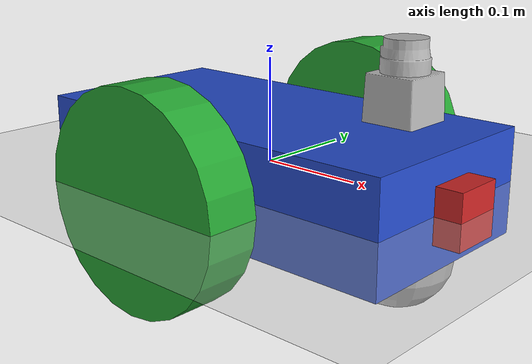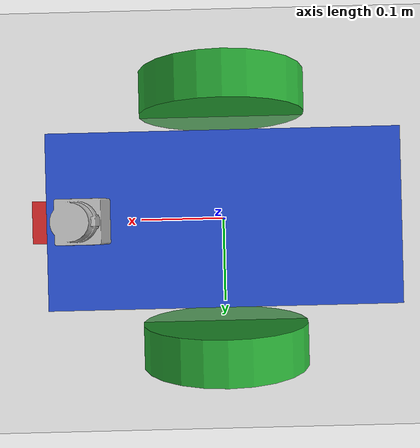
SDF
<sdf version="1.4">
 <world name="default">
  <include><uri>model://ground_plane</uri></include>
  <include><uri>model://sun</uri></include>
  <model name="my_robot">
   <link name="robot_footprint">
    <inertial>
     <pose>0.002303 0 0.000658 0 -0 0</pose>
     <mass>15.2</mass>
     <inertia>
      <ixx>0.100995</ixx>
      <ixy>0</ixy>
      <ixz>-0.00147697</ixz>
      <iyy>0.107165</iyy>
      <iyz>0</iyz>
      <izz>0.106171</izz>
     </inertia>
    </inertial>
    <collision name="robot_footprint_fixed_joint_lump__collision_collision">
     <geometry><box><size>0.4 0.2 0.1</size></box></geometry>
    </collision>
    <collision name="robot_footprint_fixed_joint_lump__back_caster_collision_collision_1">
     <pose>-0.15 0 -0.05 0 -0 0</pose>
     <geometry><sphere><radius>0.0499</radius></sphere></geometry>
    </collision>
    <collision name="robot_footprint_fixed_joint_lump__front_caster_collision_collision_2">
     <pose>0.15 0 -0.05 0 -0 0</pose>
     <geometry><sphere><radius>0.0499</radius></sphere></geometry>
    </collision>
    <collision name="robot_footprint_fixed_joint_lump__camera_collision_collision_3">
     <pose>0.2 0 0 0 -0 0</pose>
     <geometry><box><size>0.05 0.05 0.05</size></box></geometry>
    </collision>
    <collision name="robot_footprint_fixed_joint_lump__hokuyo_collision_collision_4">
     <pose>0.15 0 0.1 0 -0 0</pose>
     <geometry><box><size>0.1 0.1 0.1</size></box></geometry>
    </collision>
    <visual name="robot_footprint_fixed_joint_lump__chassis_visual_visual">
     <geometry><box><size>0.4 0.2 0.1</size></box></geometry>
     <material>
      <script><name>Gazebo/Blue</name><uri>file://media/materials/scripts/gazebo.material</uri></script>
     </material>
    </visual>
    <visual name="robot_footprint_fixed_joint_lump__back_caster_visual_visual_1">
     <pose>-0.15 0 -0.05 0 -0 0</pose>
     <geometry><sphere><radius>0.05</radius></sphere></geometry>
    </visual>
    <visual name="robot_footprint_fixed_joint_lump__front_caster_visual_visual_2">
     <pose>0.15 0 -0.05 0 -0 0</pose>
     <geometry><sphere><radius>0.05</radius></sphere></geometry>
    </visual>
    <visual name="robot_footprint_fixed_joint_lump__camera_visual_visual_3">
     <pose>0.2 0 0 0 -0 0</pose>
     <geometry><box><size>0.05 0.05 0.05</size></box></geometry>
     <material>
      <script><name>Gazebo/Red</name><uri>file://media/materials/scripts/gazebo.material</uri></script>
     </material>
    </visual>
    <visual name="robot_footprint_fixed_joint_lump__hokuyo_visual_visual_4">
     <pose>0.15 0 0.1 0 -0 0</pose>
     <geometry>
      <mesh><scale>1 1 1</scale><uri>/home/workspace/Robotics/catkin_ws/src/my_robot/meshes/hokuyo.dae</uri></mesh>
     </geometry>
     <material><script><uri>__default__</uri><name>__default__</name></script></material>
    </visual>
    <sensor type="depth" name="camera1">
     <always_on>1</always_on>
     <update_rate>20.0</update_rate>
     <visualize>true</visualize>
     <camera>
      <horizontal_fov>1.047</horizontal_fov>
      <image><width>640</width><height>480</height><format>R8G8B8</format></image>
      <clip><near>0.1</near><far>20</far></clip>
     </camera>
     <plugin name="camera_controller" filename="libgazebo_ros_openni_kinect.so">
      <alwaysOn>true</alwaysOn>
      <updateRate>10.0</updateRate>
      <cameraName>camera</cameraName>
      <frameName>camera_rgbd_frame</frameName>
      <imageTopicName>rgb/image_raw</imageTopicName>
      <depthImageTopicName>depth/image_raw</depthImageTopicName>
      <pointCloudTopicName>depth/points</pointCloudTopicName>
      <cameraInfoTopicName>rgb/camera_info</cameraInfoTopicName>
      <depthImageCameraInfoTopicName>depth/camera_info</depthImageCameraInfoTopicName>
      <pointCloudCutoff>0.4</pointCloudCutoff>
      <hackBaseline>0.07</hackBaseline>
      <distortionK1>0.0</distortionK1>
      <distortionK2>0.0</distortionK2>
      <distortionK3>0.0</distortionK3>
      <distortionT1>0.0</distortionT1>
      <distortionT2>0.0</distortionT2>
      <CxPrime>0.0</CxPrime>
      <Cx>0.0</Cx>
      <Cy>0.0</Cy>
      <focalLength>0.0</focalLength>
     </plugin>
    </sensor>
    <sensor name="head_hokuyo_sensor" type="ray">
     <visualize>0</visualize>
     <update_rate>40</update_rate>
     <ray>
      <scan>
       <horizontal>
        <samples>720</samples>
        <resolution>1</resolution>
        <min_angle>-1.5708</min_angle>
        <max_angle>1.5708</max_angle>
       </horizontal>
       <vertical><samples>1</samples><min_angle>0</min_angle><max_angle>0</max_angle></vertical>
      </scan>
      <range><min>0.1</min><max>30</max><resolution>0.01</resolution></range>
      <noise><type>gaussian</type><mean>0</mean><stddev>0.01</stddev></noise>
     </ray>
     <plugin name="gazebo_ros_head_hokuyo_controller" filename="libgazebo_ros_laser.so">
      <topicName>/scan</topicName>
      <frameName>hokuyo</frameName>
      <robotNamespace>/</robotNamespace>
     </plugin>
     <pose>0.15 0 0.1 0 -0 0</pose>
    </sensor>
   </link>
   <link name="left_wheel">
    <pose>0 0.15 0 0 -0 0</pose>
    <inertial>
     <pose>0 0 0 -0 1.5707 1.5707</pose>
     <mass>5</mass>
     <inertia><ixx>0.1</ixx><ixy>0</ixy><ixz>0</ixz><iyy>0.1</iyy><iyz>0</iyz><izz>0.1</izz></inertia>
    </inertial>
    <collision name="left_wheel_collision_collision">
     <pose>0 0 0 3.14159 1.57079 -1.57089</pose>
     <geometry><cylinder><length>0.05</length><radius>0.1</radius></cylinder></geometry>
    </collision>
    <visual name="left_wheel_visual_visual">
     <pose>0 0 0 3.14159 1.57079 -1.57089</pose>
     <geometry><cylinder><length>0.05</length><radius>0.1</radius></cylinder></geometry>
     <material>
      <script><name>Gazebo/Green</name><uri>file://media/materials/scripts/gazebo.material</uri></script>
     </material>
    </visual>
   </link>
   <joint name="left_wheel_hinge" type="revolute">
    <child>left_wheel</child>
    <parent>robot_footprint</parent>
    <axis>
     <xyz>0 1 0</xyz>
     <limit><lower>-1e+16</lower><upper>1e+16</upper></limit>
     <dynamics>
      <damping>1</damping>
      <friction>1</friction>
      <spring_reference>0</spring_reference>
      <spring_stiffness>0</spring_stiffness>
     </dynamics>
     <use_parent_model_frame>1</use_parent_model_frame>
    </axis>
   </joint>
   <link name="right_wheel">
    <pose>0 -0.15 0 0 -0 0</pose>
    <inertial>
     <pose>0 0 0 -0 1.5707 1.5707</pose>
     <mass>5</mass>
     <inertia><ixx>0.1</ixx><ixy>0</ixy><ixz>0</ixz><iyy>0.1</iyy><iyz>0</iyz><izz>0.1</izz></inertia>
    </inertial>
    <collision name="right_wheel_collision_collision">
     <pose>0 0 0 3.14159 1.57079 -1.57089</pose>
     <geometry><cylinder><length>0.05</length><radius>0.1</radius></cylinder></geometry>
    </collision>
    <visual name="right_wheel_visual_visual">
     <pose>0 0 0 3.14159 1.57079 -1.57089</pose>
     <geometry><cylinder><length>0.05</length><radius>0.1</radius></cylinder></geometry>
     <material>
      <script><name>Gazebo/Green</name><uri>file://media/materials/scripts/gazebo.material</uri></script>
     </material>
    </visual>
   </link>
   <joint name="right_wheel_hinge" type="revolute">
    <child>right_wheel</child>
    <parent>robot_footprint</parent>
    <axis>
     <xyz>0 1 0</xyz>
     <limit><lower>-1e+16</lower><upper>1e+16</upper></limit>
     <dynamics>
      <damping>1</damping>
      <friction>1</friction>
      <spring_reference>0</spring_reference>
      <spring_stiffness>0</spring_stiffness>
     </dynamics>
     <use_parent_model_frame>1</use_parent_model_frame>
    </axis>
   </joint>
   <static>0</static>
   <plugin name="differential_drive_controller" filename="libgazebo_ros_diff_drive.so">
    <legacyMode>false</legacyMode>
    <alwaysOn>true</alwaysOn>
    <updateRate>10</updateRate>
    <leftJoint>left_wheel_hinge</leftJoint>
    <rightJoint>right_wheel_hinge</rightJoint>
    <wheelSeparation>0.4</wheelSeparation>
    <wheelDiameter>0.2</wheelDiameter>
    <torque>10</torque>
    <commandTopic>cmd_vel</commandTopic>
    <odometryTopic>odom</odometryTopic>
    <odometryFrame>odom</odometryFrame>
    <robotBaseFrame>robot_footprint</robotBaseFrame>
    <publishWheelTF>false</publishWheelTF>
    <publishWheelJointState>false</publishWheelJointState>
    <rosDebugLevel>na</rosDebugLevel>
    <wheelAcceleration>0</wheelAcceleration>
    <wheelTorque>5</wheelTorque>
    <odometrySource>world</odometrySource>
    <publishTf>1</publishTf>
    <publishOdomTF>true</publishOdomTF>
    <robotNamespace>/</robotNamespace>
   </plugin>
  </model>
 </world>
</sdf>
